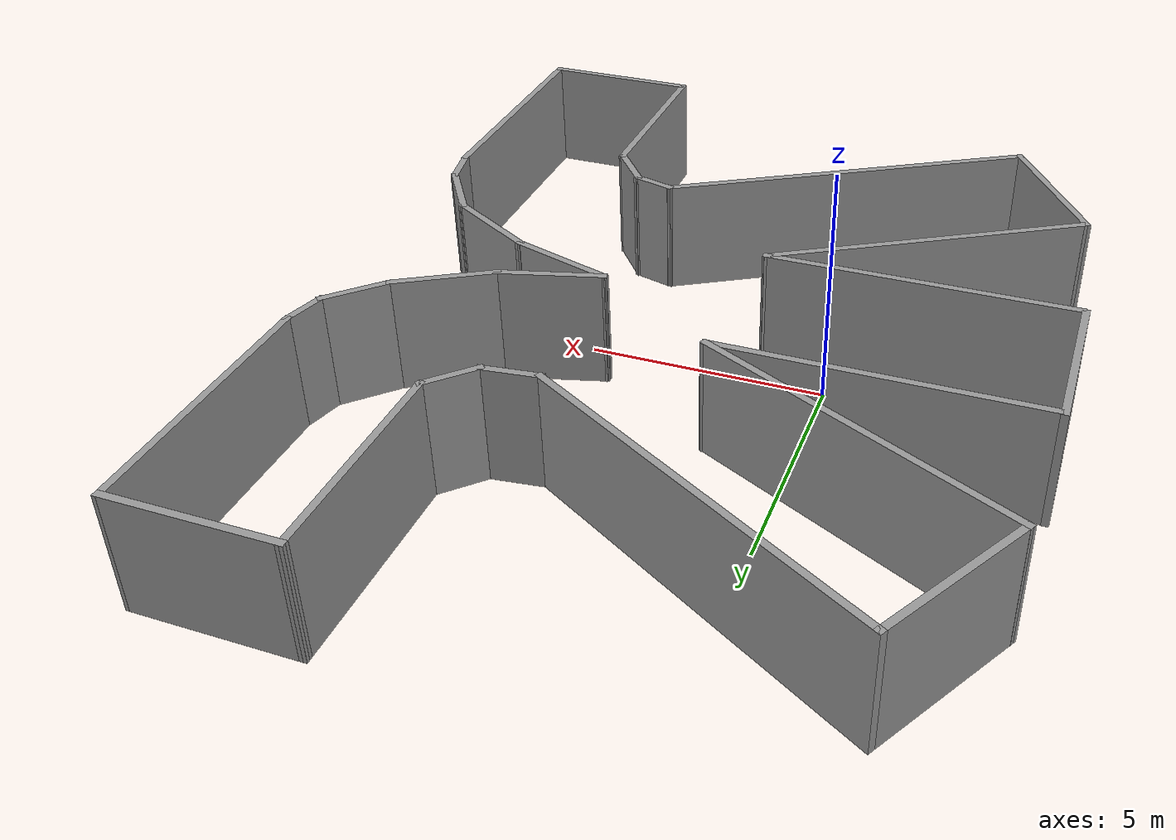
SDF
<?xml version='1.0'?>
<sdf version='1.5'>
    <model name='maze'>
      <pose frame=''>2.32625 0.708179 0 0 -0 0</pose>
      <link name='Wall_1'>
        <collision name='Wall_1_Collision'>
          <geometry>
            <box>
              <size>1 0.15 2.5</size>
            </box>
          </geometry>
          <pose frame=''>0 0 1.25 0 -0 0</pose>
          <max_contacts>10</max_contacts>
          <surface>
            <contact>
              <ode/>
            </contact>
            <bounce/>
            <friction>
              <ode/>
            </friction>
          </surface>
        </collision>
        <visual name='Wall_1_Visual'>
          <pose frame=''>0 0 1.25 0 -0 0</pose>
          <geometry>
            <box>
              <size>1 0.15 2.5</size>
            </box>
          </geometry>
          <material>
            <script>
              <uri>file://media/materials/scripts/gazebo.material</uri>
              <name>Gazebo/Grey</name>
            </script>
            <ambient>1 1 1 1</ambient>
          </material>
        </visual>
        <pose frame=''>2.45715 -3.84275 0 0 0 -0.261799</pose>
        <self_collide>0</self_collide>
        <kinematic>0</kinematic>
        <gravity>1</gravity>
      </link>
      <link name='Wall_111'>
        <collision name='Wall_111_Collision'>
          <geometry>
            <box>
              <size>7 0.15 2.5</size>
            </box>
          </geometry>
          <pose frame=''>0 0 1.25 0 -0 0</pose>
          <max_contacts>10</max_contacts>
          <surface>
            <contact>
              <ode/>
            </contact>
            <bounce/>
            <friction>
              <ode/>
            </friction>
          </surface>
        </collision>
        <visual name='Wall_111_Visual'>
          <pose frame=''>0 0 1.25 0 -0 0</pose>
          <geometry>
            <box>
              <size>7 0.15 2.5</size>
            </box>
          </geometry>
          <material>
            <script>
              <uri>file://media/materials/scripts/gazebo.material</uri>
              <name>Gazebo/Grey</name>
            </script>
            <ambient>1 1 1 1</ambient>
          </material>
        </visual>
        <pose frame=''>-3.74998 -3.33502 0 0 0 -2.61799</pose>
        <self_collide>0</self_collide>
        <kinematic>0</kinematic>
        <gravity>1</gravity>
      </link>
      <link name='Wall_113'>
        <collision name='Wall_113_Collision'>
          <geometry>
            <box>
              <size>3.39604 0.15 2.5</size>
            </box>
          </geometry>
          <pose frame=''>0 0 1.25 0 -0 0</pose>
          <max_contacts>10</max_contacts>
          <surface>
            <contact>
              <ode/>
            </contact>
            <bounce/>
            <friction>
              <ode/>
            </friction>
          </surface>
        </collision>
        <visual name='Wall_113_Visual'>
          <pose frame=''>0 0 1.25 0 -0 0</pose>
          <geometry>
            <box>
              <size>3.39604 0.15 2.5</size>
            </box>
          </geometry>
          <material>
            <script>
              <uri>file://media/materials/scripts/gazebo.material</uri>
              <name>Gazebo/Grey</name>
            </script>
            <ambient>1 1 1 1</ambient>
          </material>
        </visual>
        <pose frame=''>-5.84215 -6.41514 0 0 -0 2.13943</pose>
        <self_collide>0</self_collide>
        <kinematic>0</kinematic>
        <gravity>1</gravity>
      </link>
      <link name='Wall_120'>
        <collision name='Wall_120_Collision'>
          <geometry>
            <box>
              <size>3.49969 0.15 2.5</size>
            </box>
          </geometry>
          <pose frame=''>0 0 1.25 0 -0 0</pose>
          <max_contacts>10</max_contacts>
          <surface>
            <contact>
              <ode/>
            </contact>
            <bounce/>
            <friction>
              <ode/>
            </friction>
          </surface>
        </collision>
        <visual name='Wall_120_Visual'>
          <pose frame=''>0 0 1.25 0 -0 0</pose>
          <geometry>
            <box>
              <size>3.49969 0.15 2.5</size>
            </box>
          </geometry>
          <material>
            <script>
              <uri>file://media/materials/scripts/gazebo.material</uri>
              <name>Gazebo/Grey</name>
            </script>
            <ambient>1 1 1 1</ambient>
          </material>
        </visual>
        <pose frame=''>5.37671 8.92584 0 0 0 -0.009606</pose>
        <self_collide>0</self_collide>
        <kinematic>0</kinematic>
        <gravity>1</gravity>
      </link>
      <link name='Wall_18'>
        <collision name='Wall_18_Collision'>
          <geometry>
            <box>
              <size>2.34049 0.15 2.5</size>
            </box>
          </geometry>
          <pose frame=''>0 0 1.25 0 -0 0</pose>
          <max_contacts>10</max_contacts>
          <surface>
            <contact>
              <ode/>
            </contact>
            <bounce/>
            <friction>
              <ode/>
            </friction>
          </surface>
        </collision>
        <visual name='Wall_18_Visual'>
          <pose frame=''>0 0 1.25 0 -0 0</pose>
          <geometry>
            <box>
              <size>2.34049 0.15 2.5</size>
            </box>
          </geometry>
          <material>
            <script>
              <uri>file://media/materials/scripts/gazebo.material</uri>
              <name>Gazebo/Grey</name>
            </script>
            <ambient>1 1 1 1</ambient>
          </material>
        </visual>
        <pose frame=''>3.07568 -0.134482 0 0 0 -0.301349</pose>
        <self_collide>0</self_collide>
        <kinematic>0</kinematic>
        <gravity>1</gravity>
      </link>
      <link name='Wall_19'>
        <collision name='Wall_19_Collision'>
          <geometry>
            <box>
              <size>2.25 0.15 2.5</size>
            </box>
          </geometry>
          <pose frame=''>0 0 1.25 0 -0 0</pose>
          <max_contacts>10</max_contacts>
          <surface>
            <contact>
              <ode/>
            </contact>
            <bounce/>
            <friction>
              <ode/>
            </friction>
          </surface>
        </collision>
        <visual name='Wall_19_Visual'>
          <pose frame=''>0 0 1.25 0 -0 0</pose>
          <geometry>
            <box>
              <size>2.25 0.15 2.5</size>
            </box>
          </geometry>
          <material>
            <script>
              <uri>file://media/materials/scripts/gazebo.material</uri>
              <name>Gazebo/Grey</name>
            </script>
            <ambient>1 1 1 1</ambient>
          </material>
        </visual>
        <pose frame=''>5.03089 -0.98456 0 0 0 -0.523599</pose>
        <self_collide>0</self_collide>
        <kinematic>0</kinematic>
        <gravity>1</gravity>
      </link>
      <link name='Wall_2'>
        <collision name='Wall_2_Collision'>
          <geometry>
            <box>
              <size>1.29036 0.15 2.5</size>
            </box>
          </geometry>
          <pose frame=''>0 0 1.25 0 -0 0</pose>
          <max_contacts>10</max_contacts>
          <surface>
            <contact>
              <ode/>
            </contact>
            <bounce/>
            <friction>
              <ode/>
            </friction>
          </surface>
        </collision>
        <visual name='Wall_2_Visual'>
          <pose frame=''>0 0 1.25 0 -0 0</pose>
          <geometry>
            <box>
              <size>1.29036 0.15 2.5</size>
            </box>
          </geometry>
          <material>
            <script>
              <uri>file://media/materials/scripts/gazebo.material</uri>
              <name>Gazebo/Grey</name>
            </script>
            <ambient>1 1 1 1</ambient>
          </material>
        </visual>
        <pose frame=''>3.22422 -4.3977 0 0 0 -0.895233</pose>
        <self_collide>0</self_collide>
        <kinematic>0</kinematic>
        <gravity>1</gravity>
      </link>
      <link name='Wall_23'>
        <collision name='Wall_23_Collision'>
          <geometry>
            <box>
              <size>1.61496 0.15 2.5</size>
            </box>
          </geometry>
          <pose frame=''>0 0 1.25 0 -0 0</pose>
          <max_contacts>10</max_contacts>
          <surface>
            <contact>
              <ode/>
            </contact>
            <bounce/>
            <friction>
              <ode/>
            </friction>
          </surface>
        </collision>
        <visual name='Wall_23_Visual'>
          <pose frame=''>0 0 1.25 0 -0 0</pose>
          <geometry>
            <box>
              <size>1.61496 0.15 2.5</size>
            </box>
          </geometry>
          <material>
            <script>
              <uri>file://media/materials/scripts/gazebo.material</uri>
              <name>Gazebo/Grey</name>
            </script>
            <ambient>1 1 1 1</ambient>
          </material>
        </visual>
        <pose frame=''>6.34922 -2.11722 0 0 0 -0.978365</pose>
        <self_collide>0</self_collide>
        <kinematic>0</kinematic>
        <gravity>1</gravity>
      </link>
      <link name='Wall_30'>
        <collision name='Wall_30_Collision'>
          <geometry>
            <box>
              <size>3.5 0.15 2.5</size>
            </box>
          </geometry>
          <pose frame=''>0 0 1.25 0 -0 0</pose>
          <max_contacts>10</max_contacts>
          <surface>
            <contact>
              <ode/>
            </contact>
            <bounce/>
            <friction>
              <ode/>
            </friction>
          </surface>
        </collision>
        <visual name='Wall_30_Visual'>
          <pose frame=''>0 0 1.25 0 -0 0</pose>
          <geometry>
            <box>
              <size>3.5 0.15 2.5</size>
            </box>
          </geometry>
          <material>
            <script>
              <uri>file://media/materials/scripts/gazebo.material</uri>
              <name>Gazebo/Grey</name>
            </script>
            <ambient>1 1 1 1</ambient>
          </material>
        </visual>
        <pose frame=''>5.25578 -8.94264 0 0 -0 0</pose>
        <self_collide>0</self_collide>
        <kinematic>0</kinematic>
        <gravity>1</gravity>
      </link>
      <link name='Wall_31'>
        <collision name='Wall_31_Collision'>
          <geometry>
            <box>
              <size>5.5 0.15 2.5</size>
            </box>
          </geometry>
          <pose frame=''>0 0 1.25 0 -0 0</pose>
          <max_contacts>10</max_contacts>
          <surface>
            <contact>
              <ode/>
            </contact>
            <bounce/>
            <friction>
              <ode/>
            </friction>
          </surface>
        </collision>
        <visual name='Wall_31_Visual'>
          <pose frame=''>0 0 1.25 0 -0 0</pose>
          <geometry>
            <box>
              <size>5.5 0.15 2.5</size>
            </box>
          </geometry>
          <material>
            <script>
              <uri>file://media/materials/scripts/gazebo.material</uri>
              <name>Gazebo/Grey</name>
            </script>
            <ambient>1 1 1 1</ambient>
          </material>
        </visual>
        <pose frame=''>6.93078 -6.26764 0 0 -0 1.5708</pose>
        <self_collide>0</self_collide>
        <kinematic>0</kinematic>
        <gravity>1</gravity>
      </link>
      <link name='Wall_33'>
        <collision name='Wall_33_Collision'>
          <geometry>
            <box>
              <size>1.03476 0.15 2.5</size>
            </box>
          </geometry>
          <pose frame=''>0 0 1.25 0 -0 0</pose>
          <max_contacts>10</max_contacts>
          <surface>
            <contact>
              <ode/>
            </contact>
            <bounce/>
            <friction>
              <ode/>
            </friction>
          </surface>
        </collision>
        <visual name='Wall_33_Visual'>
          <pose frame=''>0 0 1.25 0 -0 0</pose>
          <geometry>
            <box>
              <size>1.03476 0.15 2.5</size>
            </box>
          </geometry>
          <material>
            <script>
              <uri>file://media/materials/scripts/gazebo.material</uri>
              <name>Gazebo/Grey</name>
            </script>
            <ambient>1 1 1 1</ambient>
          </material>
        </visual>
        <pose frame=''>6.8445 -3.15876 0 0 0 -1.37451</pose>
        <self_collide>0</self_collide>
        <kinematic>0</kinematic>
        <gravity>1</gravity>
      </link>
      <link name='Wall_4'>
        <collision name='Wall_4_Collision'>
          <geometry>
            <box>
              <size>4.25 0.15 2.5</size>
            </box>
          </geometry>
          <pose frame=''>0 0 1.25 0 -0 0</pose>
          <max_contacts>10</max_contacts>
          <surface>
            <contact>
              <ode/>
            </contact>
            <bounce/>
            <friction>
              <ode/>
            </friction>
          </surface>
        </collision>
        <visual name='Wall_4_Visual'>
          <pose frame=''>0 0 1.25 0 -0 0</pose>
          <geometry>
            <box>
              <size>4.25 0.15 2.5</size>
            </box>
          </geometry>
          <material>
            <script>
              <uri>file://media/materials/scripts/gazebo.material</uri>
              <name>Gazebo/Grey</name>
            </script>
            <ambient>1 1 1 1</ambient>
          </material>
        </visual>
        <pose frame=''>3.58078 -6.89264 0 0 0 -1.5708</pose>
        <self_collide>0</self_collide>
        <kinematic>0</kinematic>
        <gravity>1</gravity>
      </link>
      <link name='Wall_42'>
        <collision name='Wall_42_Collision'>
          <geometry>
            <box>
              <size>2.25 0.15 2.5</size>
            </box>
          </geometry>
          <pose frame=''>0 0 1.25 0 -0 0</pose>
          <max_contacts>10</max_contacts>
          <surface>
            <contact>
              <ode/>
            </contact>
            <bounce/>
            <friction>
              <ode/>
            </friction>
          </surface>
        </collision>
        <visual name='Wall_42_Visual'>
          <pose frame=''>0 0 1.25 0 -0 0</pose>
          <geometry>
            <box>
              <size>2.25 0.15 2.5</size>
            </box>
          </geometry>
          <material>
            <script>
              <uri>file://media/materials/scripts/gazebo.material</uri>
              <name>Gazebo/Grey</name>
            </script>
            <ambient>1 1 1 1</ambient>
          </material>
        </visual>
        <pose frame=''>3.04401 0.462356 0 0 -0 0.261799</pose>
        <self_collide>0</self_collide>
        <kinematic>0</kinematic>
        <gravity>1</gravity>
      </link>
      <link name='Wall_43'>
        <collision name='Wall_43_Collision'>
          <geometry>
            <box>
              <size>2.25 0.15 2.5</size>
            </box>
          </geometry>
          <pose frame=''>0 0 1.25 0 -0 0</pose>
          <max_contacts>10</max_contacts>
          <surface>
            <contact>
              <ode/>
            </contact>
            <bounce/>
            <friction>
              <ode/>
            </friction>
          </surface>
        </collision>
        <visual name='Wall_43_Visual'>
          <pose frame=''>0 0 1.25 0 -0 0</pose>
          <geometry>
            <box>
              <size>2.25 0.15 2.5</size>
            </box>
          </geometry>
          <material>
            <script>
              <uri>file://media/materials/scripts/gazebo.material</uri>
              <name>Gazebo/Grey</name>
            </script>
            <ambient>1 1 1 1</ambient>
          </material>
        </visual>
        <pose frame=''>4.96756 1.25912 0 0 -0 0.523599</pose>
        <self_collide>0</self_collide>
        <kinematic>0</kinematic>
        <gravity>1</gravity>
      </link>
      <link name='Wall_44'>
        <collision name='Wall_44_Collision'>
          <geometry>
            <box>
              <size>1.5 0.15 2.5</size>
            </box>
          </geometry>
          <pose frame=''>0 0 1.25 0 -0 0</pose>
          <max_contacts>10</max_contacts>
          <surface>
            <contact>
              <ode/>
            </contact>
            <bounce/>
            <friction>
              <ode/>
            </friction>
          </surface>
        </collision>
        <visual name='Wall_44_Visual'>
          <pose frame=''>0 0 1.25 0 -0 0</pose>
          <geometry>
            <box>
              <size>1.5 0.15 2.5</size>
            </box>
          </geometry>
          <material>
            <script>
              <uri>file://media/materials/scripts/gazebo.material</uri>
              <name>Gazebo/Grey</name>
            </script>
            <ambient>1 1 1 1</ambient>
          </material>
        </visual>
        <pose frame=''>6.35418 2.26141 0 0 -0 0.785398</pose>
        <self_collide>0</self_collide>
        <kinematic>0</kinematic>
        <gravity>1</gravity>
      </link>
      <link name='Wall_47'>
        <collision name='Wall_47_Collision'>
          <geometry>
            <box>
              <size>4.5 0.15 2.5</size>
            </box>
          </geometry>
          <pose frame=''>0 0 1.25 0 -0 0</pose>
          <max_contacts>10</max_contacts>
          <surface>
            <contact>
              <ode/>
            </contact>
            <bounce/>
            <friction>
              <ode/>
            </friction>
          </surface>
        </collision>
        <visual name='Wall_47_Visual'>
          <pose frame=''>0 0 1.25 0 -0 0</pose>
          <geometry>
            <box>
              <size>4.5 0.15 2.5</size>
            </box>
          </geometry>
          <material>
            <script>
              <uri>file://media/materials/scripts/gazebo.material</uri>
              <name>Gazebo/Grey</name>
            </script>
            <ambient>1 1 1 1</ambient>
          </material>
        </visual>
        <pose frame=''>3.70194 6.76692 0 0 0 -1.5708</pose>
        <self_collide>0</self_collide>
        <kinematic>0</kinematic>
        <gravity>1</gravity>
      </link>
      <link name='Wall_48'>
        <collision name='Wall_48_Collision'>
          <geometry>
            <box>
              <size>1.25 0.15 2.5</size>
            </box>
          </geometry>
          <pose frame=''>0 0 1.25 0 -0 0</pose>
          <max_contacts>10</max_contacts>
          <surface>
            <contact>
              <ode/>
            </contact>
            <bounce/>
            <friction>
              <ode/>
            </friction>
          </surface>
        </collision>
        <visual name='Wall_48_Visual'>
          <pose frame=''>0 0 1.25 0 -0 0</pose>
          <geometry>
            <box>
              <size>1.25 0.15 2.5</size>
            </box>
          </geometry>
          <material>
            <script>
              <uri>file://media/materials/scripts/gazebo.material</uri>
              <name>Gazebo/Grey</name>
            </script>
            <ambient>1 1 1 1</ambient>
          </material>
        </visual>
        <pose frame=''>3.31303 4.20302 0 0 0 -2.35619</pose>
        <self_collide>0</self_collide>
        <kinematic>0</kinematic>
        <gravity>1</gravity>
      </link>
      <link name='Wall_49'>
        <collision name='Wall_49_Collision'>
          <geometry>
            <box>
              <size>1.27094 0.15 2.5</size>
            </box>
          </geometry>
          <pose frame=''>0 0 1.25 0 -0 0</pose>
          <max_contacts>10</max_contacts>
          <surface>
            <contact>
              <ode/>
            </contact>
            <bounce/>
            <friction>
              <ode/>
            </friction>
          </surface>
        </collision>
        <visual name='Wall_49_Visual'>
          <pose frame=''>0 0 1.25 0 -0 0</pose>
          <geometry>
            <box>
              <size>1.27094 0.15 2.5</size>
            </box>
          </geometry>
          <material>
            <script>
              <uri>file://media/materials/scripts/gazebo.material</uri>
              <name>Gazebo/Grey</name>
            </script>
            <ambient>1 1 1 1</ambient>
          </material>
        </visual>
        <pose frame=''>2.36712 3.75185 0 0 0 -3.03028</pose>
        <self_collide>0</self_collide>
        <kinematic>0</kinematic>
        <gravity>1</gravity>
      </link>
      <link name='Wall_50'>
        <collision name='Wall_50_Collision'>
          <geometry>
            <box>
              <size>8.25 0.15 2.5</size>
            </box>
          </geometry>
          <pose frame=''>0 0 1.25 0 -0 0</pose>
          <max_contacts>10</max_contacts>
          <surface>
            <contact>
              <ode/>
            </contact>
            <bounce/>
            <friction>
              <ode/>
            </friction>
          </surface>
        </collision>
        <visual name='Wall_50_Visual'>
          <pose frame=''>0 0 1.25 0 -0 0</pose>
          <geometry>
            <box>
              <size>8.25 0.15 2.5</size>
            </box>
          </geometry>
          <material>
            <script>
              <uri>file://media/materials/scripts/gazebo.material</uri>
              <name>Gazebo/Grey</name>
            </script>
            <ambient>1 1 1 1</ambient>
          </material>
        </visual>
        <pose frame=''>-1.69728 5.71458 0 0 -0 2.61799</pose>
        <self_collide>0</self_collide>
        <kinematic>0</kinematic>
        <gravity>1</gravity>
      </link>
      <link name='Wall_60'>
        <collision name='Wall_60_Collision'>
          <geometry>
            <box>
              <size>1 0.15 2.5</size>
            </box>
          </geometry>
          <pose frame=''>0 0 1.25 0 -0 0</pose>
          <max_contacts>10</max_contacts>
          <surface>
            <contact>
              <ode/>
            </contact>
            <bounce/>
            <friction>
              <ode/>
            </friction>
          </surface>
        </collision>
        <visual name='Wall_60_Visual'>
          <pose frame=''>0 0 1.25 0 -0 0</pose>
          <geometry>
            <box>
              <size>1 0.15 2.5</size>
            </box>
          </geometry>
          <material>
            <script>
              <uri>file://media/materials/scripts/gazebo.material</uri>
              <name>Gazebo/Grey</name>
            </script>
            <ambient>1 1 1 1</ambient>
          </material>
        </visual>
        <pose frame=''>6.94148 3.14923 0 0 -0 1.309</pose>
        <self_collide>0</self_collide>
        <kinematic>0</kinematic>
        <gravity>1</gravity>
      </link>
      <link name='Wall_61'>
        <collision name='Wall_61_Collision'>
          <geometry>
            <box>
              <size>5.5 0.15 2.5</size>
            </box>
          </geometry>
          <pose frame=''>0 0 1.25 0 -0 0</pose>
          <max_contacts>10</max_contacts>
          <surface>
            <contact>
              <ode/>
            </contact>
            <bounce/>
            <friction>
              <ode/>
            </friction>
          </surface>
        </collision>
        <visual name='Wall_61_Visual'>
          <pose frame=''>0 0 1.25 0 -0 0</pose>
          <geometry>
            <box>
              <size>5.5 0.15 2.5</size>
            </box>
          </geometry>
          <material>
            <script>
              <uri>file://media/materials/scripts/gazebo.material</uri>
              <name>Gazebo/Grey</name>
            </script>
            <ambient>1 1 1 1</ambient>
          </material>
        </visual>
        <pose frame=''>7.05148 6.23475 0 0 -0 1.5708</pose>
        <self_collide>0</self_collide>
        <kinematic>0</kinematic>
        <gravity>1</gravity>
      </link>
      <link name='Wall_75'>
        <collision name='Wall_75_Collision'>
          <geometry>
            <box>
              <size>6.5 0.15 2.5</size>
            </box>
          </geometry>
          <pose frame=''>0 0 1.25 0 -0 0</pose>
          <max_contacts>10</max_contacts>
          <surface>
            <contact>
              <ode/>
            </contact>
            <bounce/>
            <friction>
              <ode/>
            </friction>
          </surface>
        </collision>
        <visual name='Wall_75_Visual'>
          <pose frame=''>0 0 1.25 0 -0 0</pose>
          <geometry>
            <box>
              <size>6.5 0.15 2.5</size>
            </box>
          </geometry>
          <material>
            <script>
              <uri>file://media/materials/scripts/gazebo.material</uri>
              <name>Gazebo/Grey</name>
            </script>
            <ambient>1 1 1 1</ambient>
          </material>
        </visual>
        <pose frame=''>-3.78306 1.73575 0 0 -0 3.14159</pose>
        <self_collide>0</self_collide>
        <kinematic>0</kinematic>
        <gravity>1</gravity>
      </link>
      <link name='Wall_77'>
        <collision name='Wall_77_Collision'>
          <geometry>
            <box>
              <size>6.36122 0.15 2.5</size>
            </box>
          </geometry>
          <pose frame=''>0 0 1.25 0 -0 0</pose>
          <max_contacts>10</max_contacts>
          <surface>
            <contact>
              <ode/>
            </contact>
            <bounce/>
            <friction>
              <ode/>
            </friction>
          </surface>
        </collision>
        <visual name='Wall_77_Visual'>
          <pose frame=''>0 0 1.25 0 -0 0</pose>
          <geometry>
            <box>
              <size>6.36122 0.15 2.5</size>
            </box>
          </geometry>
          <material>
            <script>
              <uri>file://media/materials/scripts/gazebo.material</uri>
              <name>Gazebo/Grey</name>
            </script>
            <ambient>1 1 1 1</ambient>
          </material>
        </visual>
        <pose frame=''>-3.88945 -1.62252 0 0 -0 3.14159</pose>
        <self_collide>0</self_collide>
        <kinematic>0</kinematic>
        <gravity>1</gravity>
      </link>
      <link name='Wall_85'>
        <collision name='Wall_85_Collision'>
          <geometry>
            <box>
              <size>3.5 0.15 2.5</size>
            </box>
          </geometry>
          <pose frame=''>0 0 1.25 0 -0 0</pose>
          <max_contacts>10</max_contacts>
          <surface>
            <contact>
              <ode/>
            </contact>
            <bounce/>
            <friction>
              <ode/>
            </friction>
          </surface>
        </collision>
        <visual name='Wall_85_Visual'>
          <pose frame=''>0 0 1.25 0 -0 0</pose>
          <geometry>
            <box>
              <size>3.5 0.15 2.5</size>
            </box>
          </geometry>
          <material>
            <script>
              <uri>file://media/materials/scripts/gazebo.material</uri>
              <name>Gazebo/Grey</name>
            </script>
            <ambient>1 1 1 1</ambient>
          </material>
        </visual>
        <pose frame=''>-7.06833 0.074706 0 0 -0 1.5708</pose>
        <self_collide>0</self_collide>
        <kinematic>0</kinematic>
        <gravity>1</gravity>
      </link>
      <link name='Wall_89'>
        <collision name='Wall_89_Collision'>
          <geometry>
            <box>
              <size>3.5 0.15 2.5</size>
            </box>
          </geometry>
          <pose frame=''>0 0 1.25 0 -0 0</pose>
          <max_contacts>10</max_contacts>
          <surface>
            <contact>
              <ode/>
            </contact>
            <bounce/>
            <friction>
              <ode/>
            </friction>
          </surface>
        </collision>
        <visual name='Wall_89_Visual'>
          <pose frame=''>0 0 1.25 0 -0 0</pose>
          <geometry>
            <box>
              <size>3.5 0.15 2.5</size>
            </box>
          </geometry>
          <material>
            <script>
              <uri>file://media/materials/scripts/gazebo.material</uri>
              <name>Gazebo/Grey</name>
            </script>
            <ambient>1 1 1 1</ambient>
          </material>
        </visual>
        <pose frame=''>-6.04218 6.28899 0 0 0 -2.0944</pose>
        <self_collide>0</self_collide>
        <kinematic>0</kinematic>
        <gravity>1</gravity>
      </link>
      <link name='Wall_91'>
        <collision name='Wall_91_Collision'>
          <geometry>
            <box>
              <size>7.14712 0.15 2.5</size>
            </box>
          </geometry>
          <pose frame=''>0 0 1.25 0 -0 0</pose>
          <max_contacts>10</max_contacts>
          <surface>
            <contact>
              <ode/>
            </contact>
            <bounce/>
            <friction>
              <ode/>
            </friction>
          </surface>
        </collision>
        <visual name='Wall_91_Visual'>
          <pose frame=''>0 0 1.25 0 -0 0</pose>
          <geometry>
            <box>
              <size>7.14712 0.15 2.5</size>
            </box>
          </geometry>
          <material>
            <script>
              <uri>file://media/materials/scripts/gazebo.material</uri>
              <name>Gazebo/Grey</name>
            </script>
            <ambient>1 1 1 1</ambient>
          </material>
        </visual>
        <pose frame=''>-3.74387 3.28708 0 0 -0 2.68219</pose>
        <self_collide>0</self_collide>
        <kinematic>0</kinematic>
        <gravity>1</gravity>
      </link>
      <link name='Wall_96'>
        <collision name='Wall_96_Collision'>
          <geometry>
            <box>
              <size>8.25 0.15 2.5</size>
            </box>
          </geometry>
          <pose frame=''>0 0 1.25 0 -0 0</pose>
          <max_contacts>10</max_contacts>
          <surface>
            <contact>
              <ode/>
            </contact>
            <bounce/>
            <friction>
              <ode/>
            </friction>
          </surface>
        </collision>
        <visual name='Wall_96_Visual'>
          <pose frame=''>0 0 1.25 0 -0 0</pose>
          <geometry>
            <box>
              <size>8.25 0.15 2.5</size>
            </box>
          </geometry>
          <material>
            <script>
              <uri>file://media/materials/scripts/gazebo.material</uri>
              <name>Gazebo/Grey</name>
            </script>
            <ambient>1 1 1 1</ambient>
          </material>
        </visual>
        <pose frame=''>-1.46077 -5.75776 0 0 0 -2.61799</pose>
        <self_collide>0</self_collide>
        <kinematic>0</kinematic>
        <gravity>1</gravity>
      </link>
      <static>1</static>
    </model>
</sdf>
